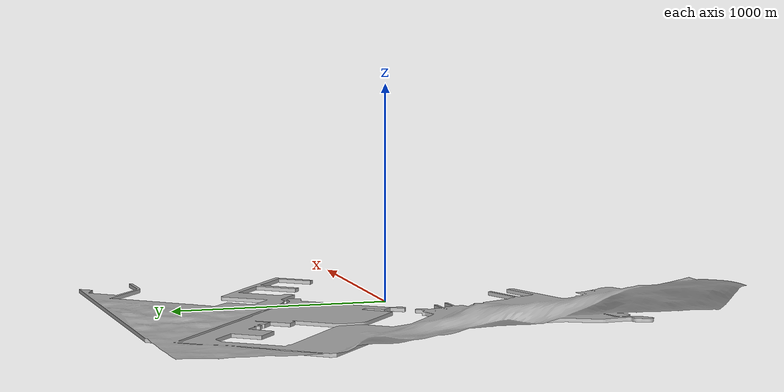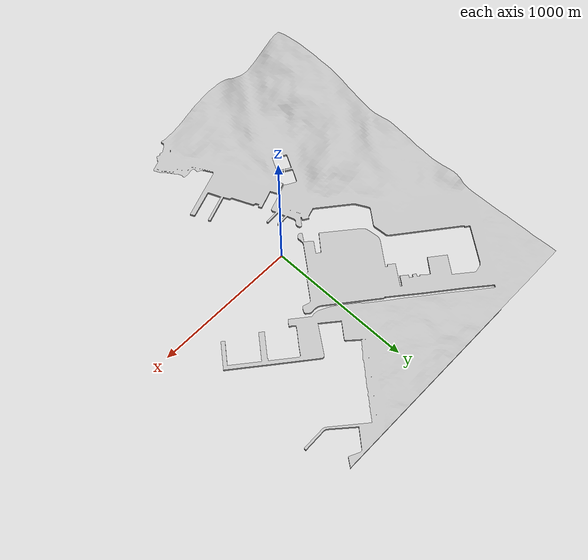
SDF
<?xml version="1.0" encoding="UTF-8"?>
<sdf version="1.6">
  <model name="marina">
    <static>true</static>
    <link name="link">
      <pose>0 0 0 1.570796 0 0</pose>
      <visual name="visual">
        <geometry>
          <mesh>
            <uri>file://marina/meshes/terrain.dae</uri>
          </mesh>
        </geometry>
      </visual>
      <collision name="collision">
        <geometry>
          <mesh>
            <uri>file://marina/meshes/terrain.dae</uri>
          </mesh>
        </geometry>
      </collision>
    </link>
  </model>
</sdf>
